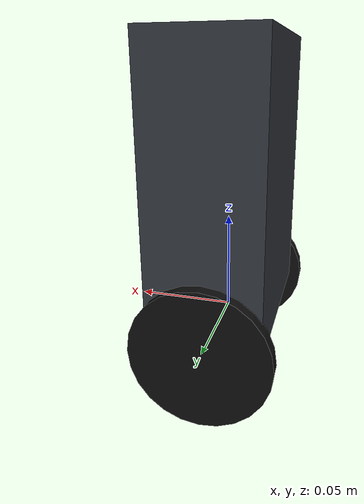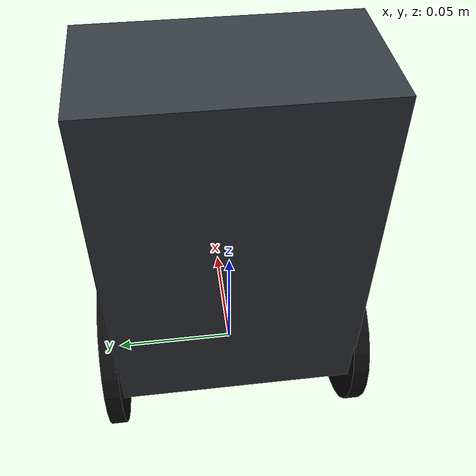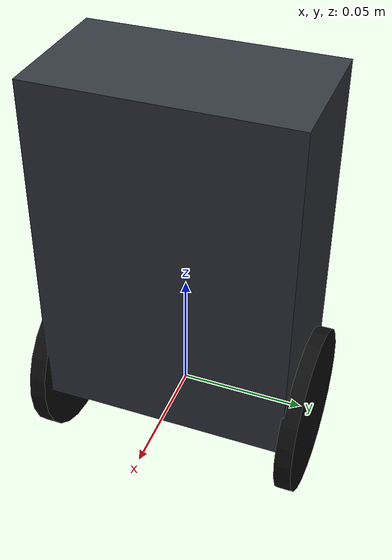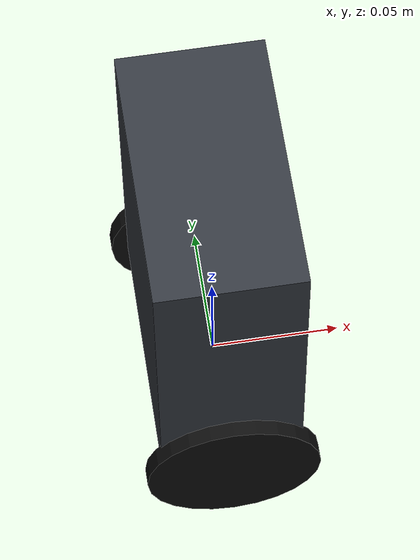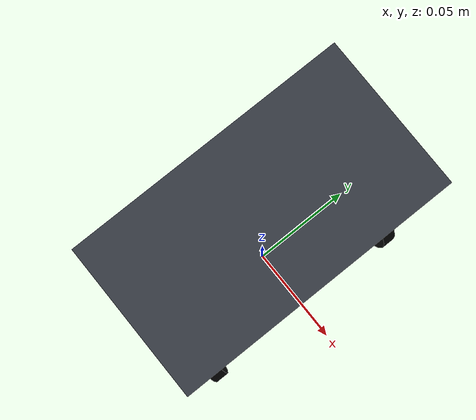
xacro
<?xml version="1.0"?>
<robot name="case" xmlns:xacro="http://www.ros.org/wiki/xacro">

  <xacro:arg name="total_mass_kg"            default="0.85"/>
  <xacro:arg name="com_height_above_axle_m" default="0.070"/>
  <xacro:arg name="wheel_radius_m"          default="0.034"/>
  <xacro:arg name="wheel_separation_m"      default="0.105"/>
  <xacro:arg name="body_depth_m"            default="0.055"/>
  <xacro:arg name="body_width_m"            default="0.100"/>
  <xacro:arg name="wheel_friction"        default="1.0"/>

  <xacro:arg name="imu_offset_xyz_m"        default="0 0 0.030"/>

  <xacro:arg name="imu_update_rate"       default="1000"/>

  <xacro:arg name="effort_limit"          default="1.0"/>

  <xacro:arg name="controller_params_file" default="$(find case_sim)/config/controllers.yaml"/>

  <xacro:property name="total_mass"       value="$(arg total_mass_kg)"/>
  <xacro:property name="com_height"       value="$(arg com_height_above_axle_m)"/>
  <xacro:property name="wheel_radius"     value="$(arg wheel_radius_m)"/>
  <xacro:property name="wheel_separation" value="$(arg wheel_separation_m)"/>
  <xacro:property name="body_depth"       value="$(arg body_depth_m)"/>
  <xacro:property name="body_width"       value="$(arg body_width_m)"/>
  <xacro:property name="wheel_friction"   value="$(arg wheel_friction)"/>
  <xacro:property name="effort_limit"     value="$(arg effort_limit)"/>

  <xacro:property name="body_height" value="${2 * com_height}"/>

  <!-- Wheels and sensor board are not swept in their own right; they take fixed
       shares of the total so that total_mass keeps meaning the whole robot. -->
  <xacro:property name="wheel_mass" value="${0.05 * total_mass}"/>
  <xacro:property name="imu_mass"   value="${0.01 * total_mass}"/>
  <xacro:property name="body_mass"  value="${total_mass - 2 * wheel_mass - imu_mass}"/>

  <!-- Tyre thickness is not swept: a cylinder's inertia about its spin axis is
       m*r^2/2 whatever the width. Tied to the radius so the wheel stays in
       proportion when the radius is. -->
  <xacro:property name="wheel_width" value="${0.2 * wheel_radius}"/>

  <!-- MPU6050 breakout footprint, used only for the board's (negligible) inertia. -->
  <xacro:property name="imu_board_size" value="0.020"/>

  <material name="case_shell"><color rgba="0.20 0.22 0.25 1.0"/></material>
  <material name="case_tyre"><color rgba="0.05 0.05 0.05 1.0"/></material>

  <!-- Inertia is computed from the geometry rather than written down, so changing a
       mass or a dimension cannot leave a stale tensor behind. -->
  <xacro:macro name="box_inertia" params="mass x y z">
    <inertia ixx="${mass * (y*y + z*z) / 12.0}" ixy="0.0" ixz="0.0"
             iyy="${mass * (x*x + z*z) / 12.0}" iyz="0.0"
             izz="${mass * (x*x + y*y) / 12.0}"/>
  </xacro:macro>

  <!-- Solid cylinder about its own axis (local Z). Wheel links give the inertial
       origin the same rpy as the geometry, which puts the spin axis on Y. -->
  <xacro:macro name="cylinder_inertia" params="mass radius length">
    <inertia ixx="${mass * (3 * radius*radius + length*length) / 12.0}" ixy="0.0" ixz="0.0"
             iyy="${mass * (3 * radius*radius + length*length) / 12.0}" iyz="0.0"
             izz="${mass * radius*radius / 2.0}"/>
  </xacro:macro>

  <!-- base_link's origin is the wheel axle centre, not the centre of mass: the spawn
       height is wheel_radius and the initial tilt is a rotation about this point. -->
  <link name="base_link">
    <visual>
      <origin xyz="0 0 ${com_height}" rpy="0 0 0"/>
      <geometry><box size="${body_depth} ${body_width} ${body_height}"/></geometry>
      <material name="case_shell"/>
    </visual>
    <collision>
      <origin xyz="0 0 ${com_height}" rpy="0 0 0"/>
      <geometry><box size="${body_depth} ${body_width} ${body_height}"/></geometry>
    </collision>
    <inertial>
      <origin xyz="0 0 ${com_height}" rpy="0 0 0"/>
      <mass value="${body_mass}"/>
      <xacro:box_inertia mass="${body_mass}" x="${body_depth}" y="${body_width}" z="${body_height}"/>
    </inertial>
  </link>

  <xacro:macro name="wheel" params="side reflect">
    <link name="${side}_wheel">
      <visual>
        <origin xyz="0 0 0" rpy="${pi/2} 0 0"/>
        <geometry><cylinder radius="${wheel_radius}" length="${wheel_width}"/></geometry>
        <material name="case_tyre"/>
      </visual>
      <collision>
        <origin xyz="0 0 0" rpy="0 0 0"/>
        <geometry><sphere radius="${wheel_radius}"/></geometry>
      </collision>
      <inertial>
        <origin xyz="0 0 0" rpy="${pi/2} 0 0"/>
        <mass value="${wheel_mass}"/>
        <xacro:cylinder_inertia mass="${wheel_mass}" radius="${wheel_radius}" length="${wheel_width}"/>
      </inertial>
    </link>

    <joint name="${side}_wheel_joint" type="continuous">
      <parent link="base_link"/>
      <child link="${side}_wheel"/>
      <origin xyz="0 ${reflect * wheel_separation / 2.0} 0" rpy="0 0 0"/>
      <axis xyz="0 1 0"/>
    </joint>

    <gazebo reference="${side}_wheel">
      <mu1>${wheel_friction}</mu1>
      <mu2>${wheel_friction}</mu2>
    </gazebo>
  </xacro:macro>

  <xacro:wheel side="left"  reflect="1"/>
  <xacro:wheel side="right" reflect="-1"/>

  <!-- Deliberately not at the centre of mass: the real board is mounted where it
       fits, and that offset feeds centripetal acceleration into its readings. -->
  <link name="imu_link">
    <inertial>
      <origin xyz="0 0 0" rpy="0 0 0"/>
      <mass value="${imu_mass}"/>
      <xacro:box_inertia mass="${imu_mass}" x="${imu_board_size}" y="${imu_board_size}" z="${imu_board_size}"/>
    </inertial>
  </link>

  <joint name="imu_joint" type="fixed">
    <parent link="base_link"/>
    <child link="imu_link"/>
    <origin xyz="$(arg imu_offset_xyz_m)" rpy="0 0 0"/>
  </joint>

  <!-- sdformat merges a fixed joint's child into its parent by default, which would
       take imu_link and the sensor gz_ros2_control matches by name with it. -->
  <gazebo reference="imu_joint">
    <preserveFixedJoint>true</preserveFixedJoint>
  </gazebo>

  <gazebo reference="imu_link">
    <sensor name="imu_sensor" type="imu">
      <always_on>1</always_on>
      <update_rate>$(arg imu_update_rate)</update_rate>
      <topic>imu</topic>
      <imu>
        <orientation_reference_frame>
          <localization>ENU</localization>
        </orientation_reference_frame>
      </imu>
    </sensor>
  </gazebo>

  <ros2_control name="case_gz_system" type="system">
    <hardware>
      <plugin>gz_ros2_control/GazeboSimSystem</plugin>
    </hardware>

    <!-- Effort, because it is the only interface that lets the motor model decide
         the torque. Velocity or position would hide the actuator behind Gazebo's
         own controller. -->
    <joint name="left_wheel_joint">
      <command_interface name="effort">
        <param name="min">${-effort_limit}</param>
        <param name="max">${effort_limit}</param>
      </command_interface>
      <state_interface name="position"/>
      <state_interface name="velocity"/>
    </joint>

    <joint name="right_wheel_joint">
      <command_interface name="effort">
        <param name="min">${-effort_limit}</param>
        <param name="max">${effort_limit}</param>
      </command_interface>
      <state_interface name="position"/>
      <state_interface name="velocity"/>
    </joint>

    <sensor name="imu_sensor">
      <state_interface name="orientation.x"/>
      <state_interface name="orientation.y"/>
      <state_interface name="orientation.z"/>
      <state_interface name="orientation.w"/>
      <state_interface name="angular_velocity.x"/>
      <state_interface name="angular_velocity.y"/>
      <state_interface name="angular_velocity.z"/>
      <state_interface name="linear_acceleration.x"/>
      <state_interface name="linear_acceleration.y"/>
      <state_interface name="linear_acceleration.z"/>
    </sensor>
  </ros2_control>

  <gazebo>
    <plugin filename="gz_ros2_control-system" name="gz_ros2_control::GazeboSimROS2ControlPlugin">
      <parameters>$(arg controller_params_file)</parameters>
    </plugin>

    <plugin filename="gz-sim-pose-publisher-system"
            name="gz::sim::systems::PosePublisher">
      <publish_link_pose>false</publish_link_pose>
      <publish_visual_pose>false</publish_visual_pose>
      <publish_collision_pose>false</publish_collision_pose>
      <publish_sensor_pose>false</publish_sensor_pose>
      <publish_nested_model_pose>false</publish_nested_model_pose>
      <publish_model_pose>true</publish_model_pose>
      <use_pose_vector_msg>true</use_pose_vector_msg>
      <update_frequency>50</update_frequency>
    </plugin>
  </gazebo>

</robot>
